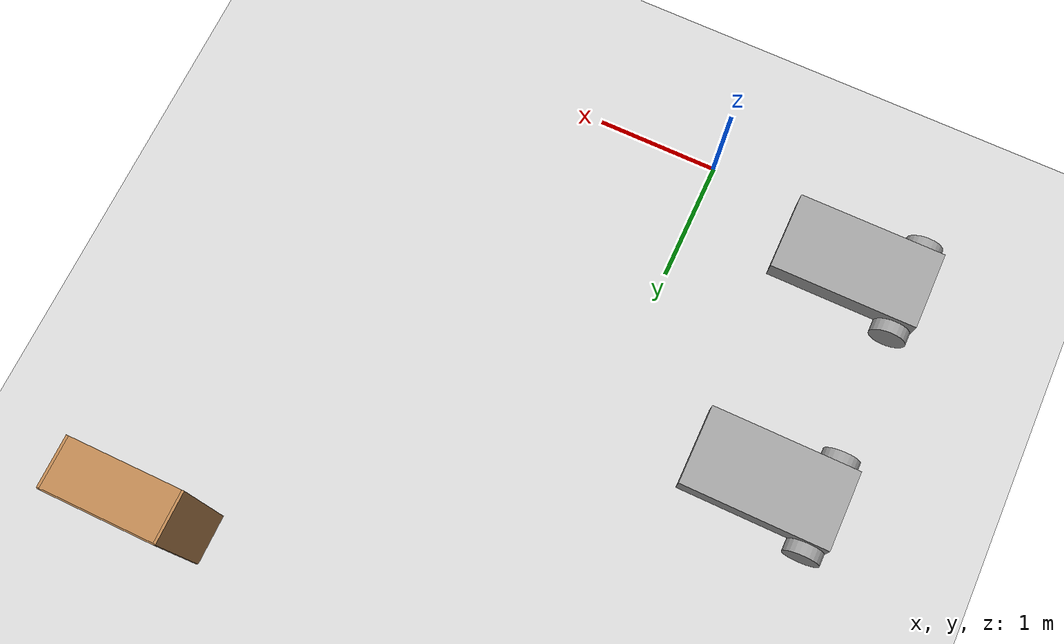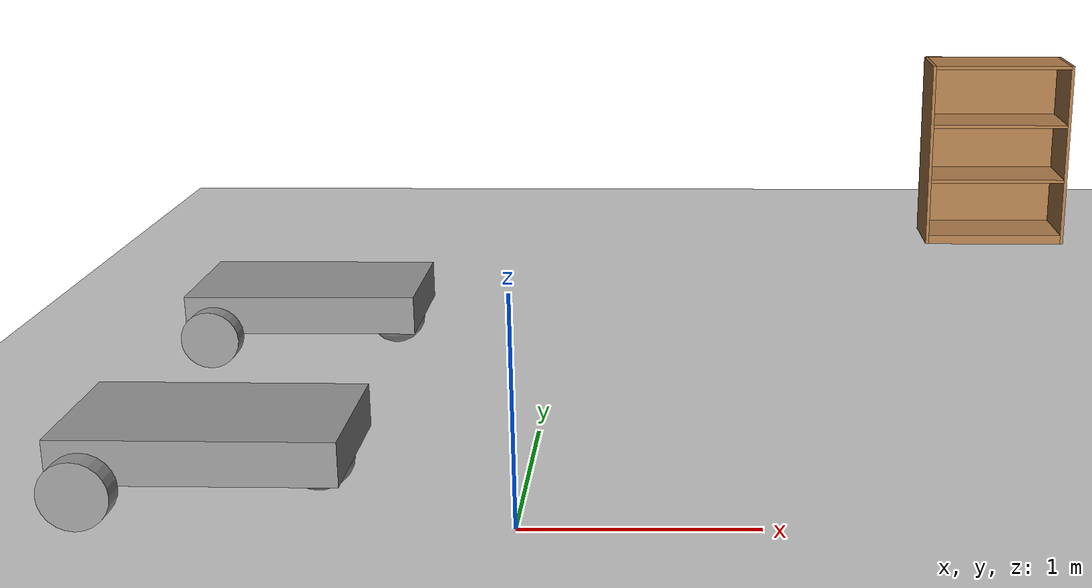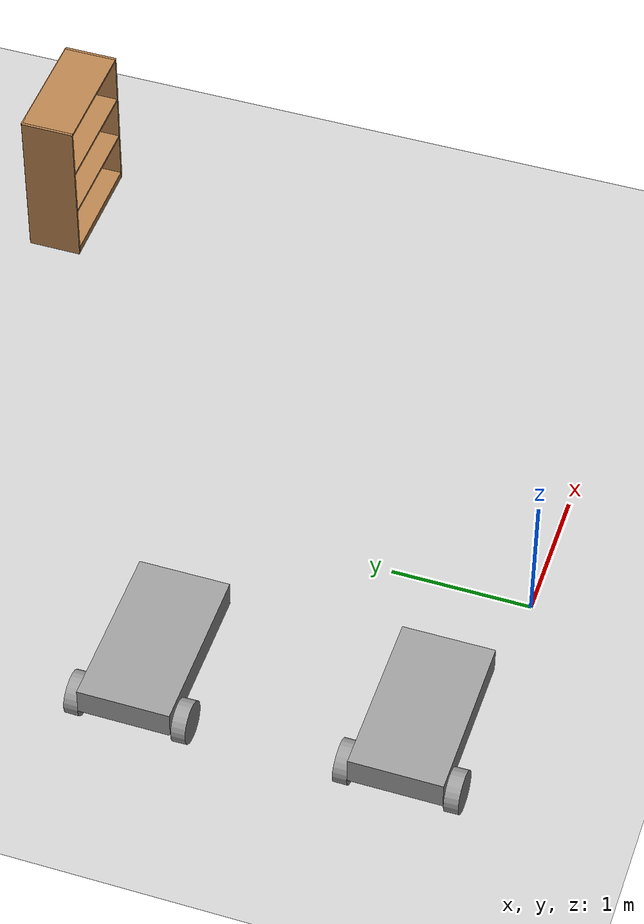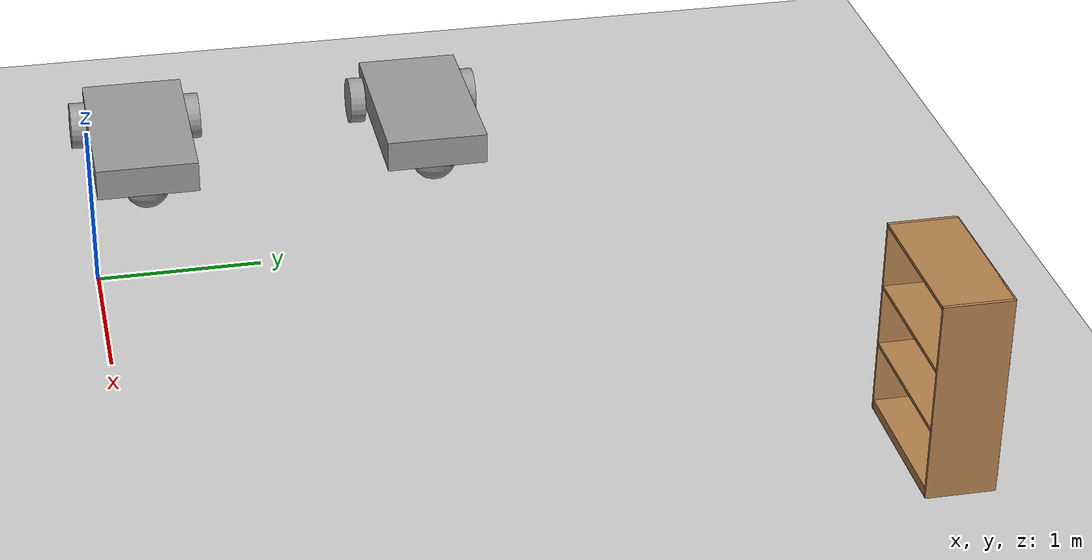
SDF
<sdf version="1.6">
 <world name="default">
  <model name="ground_plane">
   <static>1</static>
   <link name="link">
    <collision name="collision">
     <geometry><plane><normal>0 0 1</normal><size>100 100</size></plane></geometry>
     <surface><friction><ode><mu>100</mu><mu2>50</mu2></ode></friction></surface>
    </collision>
    <visual name="visual">
     <cast_shadows>0</cast_shadows>
     <geometry><plane><normal>0 0 1</normal><size>100 100</size></plane></geometry>
     <material>
      <script><uri>file://media/materials/scripts/gazebo.material</uri><name>Gazebo/Grey</name></script>
     </material>
    </visual>
   </link>
  </model>
  <model name="robot">
   <link name="link_0">
    <pose>0.1125 0.000384 -0.148115 0 -0 0</pose>
    <inertial>
     <mass>1</mass>
     <inertia>
      <ixx>0.166667</ixx>
      <ixy>0</ixy>
      <ixz>0</ixz>
      <iyy>0.166667</iyy>
      <iyz>0</iyz>
      <izz>0.166667</izz>
     </inertia>
    </inertial>
    <visual name="visual">
     <pose>0 0 0.3 0 -0 0</pose>
     <geometry><box><size>1.2 0.65 0.2</size></box></geometry>
     <material>
      <lighting>1</lighting>
      <script><uri>file://media/materials/scripts/gazebo.material</uri><name>Gazebo/Grey</name></script>
      <shader type="pixel"><normal_map>__default__</normal_map></shader>
      <ambient>0.3 0.3 0.3 1</ambient>
      <diffuse>0.7 0.7 0.7 1</diffuse>
      <specular>0.01 0.01 0.01 1</specular>
      <emissive>0 0 0 1</emissive>
     </material>
    </visual>
    <collision name="collision">
     <pose>0 0 0.3 0 -0 0</pose>
     <geometry><box><size>1.2 0.65 0.2</size></box></geometry>
     <surface>
      <friction>
       <ode><mu>1</mu><mu2>1</mu2><fdir1>0 0 0</fdir1><slip1>0</slip1><slip2>0</slip2></ode>
       <torsional>
        <coefficient>1</coefficient>
        <patch_radius>0</patch_radius>
        <surface_radius>0</surface_radius>
        <use_patch_radius>1</use_patch_radius>
        <ode><slip>0</slip></ode>
       </torsional>
      </friction>
      <bounce><restitution_coefficient>0</restitution_coefficient><threshold>1e+06</threshold></bounce>
      <contact>
       <collide_without_contact>0</collide_without_contact>
       <collide_without_contact_bitmask>1</collide_without_contact_bitmask>
       <collide_bitmask>1</collide_bitmask>
       <ode>
        <soft_cfm>0</soft_cfm>
        <soft_erp>0.2</soft_erp>
        <kp>1e+13</kp>
        <kd>1</kd>
        <max_vel>0.01</max_vel>
        <min_depth>0</min_depth>
       </ode>
       <bullet>
        <split_impulse>1</split_impulse>
        <split_impulse_penetration_threshold>-0.01</split_impulse_penetration_threshold>
        <soft_cfm>0</soft_cfm>
        <soft_erp>0.2</soft_erp>
        <kp>1e+13</kp>
        <kd>1</kd>
       </bullet>
      </contact>
     </surface>
    </collision>
   </link>
   <link name="link_1">
    <pose>0.5625 0.000384 0.051885 0 -0 0</pose>
    <inertial>
     <mass>1</mass>
     <inertia><ixx>0.1</ixx><ixy>0</ixy><ixz>0</ixz><iyy>0.1</iyy><iyz>0</iyz><izz>0.1</izz></inertia>
    </inertial>
    <visual name="visual">
     <geometry><sphere><radius>0.15</radius></sphere></geometry>
     <material>
      <lighting>1</lighting>
      <script><uri>file://media/materials/scripts/gazebo.material</uri><name>Gazebo/Grey</name></script>
      <shader type="pixel"><normal_map>__default__</normal_map></shader>
      <ambient>0.3 0.3 0.3 1</ambient>
      <diffuse>0.7 0.7 0.7 1</diffuse>
      <specular>0.01 0.01 0.01 1</specular>
      <emissive>0 0 0 1</emissive>
     </material>
    </visual>
    <collision name="collision">
     <geometry><sphere><radius>0.15</radius></sphere></geometry>
     <surface>
      <friction>
       <ode><mu>1</mu><mu2>1</mu2><fdir1>0 0 0</fdir1><slip1>0</slip1><slip2>0</slip2></ode>
       <torsional>
        <coefficient>1</coefficient>
        <patch_radius>0</patch_radius>
        <surface_radius>0</surface_radius>
        <use_patch_radius>1</use_patch_radius>
        <ode><slip>0</slip></ode>
       </torsional>
      </friction>
      <bounce><restitution_coefficient>0</restitution_coefficient><threshold>1e+06</threshold></bounce>
      <contact>
       <collide_without_contact>0</collide_without_contact>
       <collide_without_contact_bitmask>1</collide_without_contact_bitmask>
       <collide_bitmask>1</collide_bitmask>
       <ode>
        <soft_cfm>0</soft_cfm>
        <soft_erp>0.2</soft_erp>
        <kp>1e+13</kp>
        <kd>1</kd>
        <max_vel>0.01</max_vel>
        <min_depth>0</min_depth>
       </ode>
       <bullet>
        <split_impulse>1</split_impulse>
        <split_impulse_penetration_threshold>-0.01</split_impulse_penetration_threshold>
        <soft_cfm>0</soft_cfm>
        <soft_erp>0.2</soft_erp>
        <kp>1e+13</kp>
        <kd>1</kd>
       </bullet>
      </contact>
     </surface>
    </collision>
   </link>
   <link name="link_2">
    <pose>-0.3375 0.377183 0.047845 -1.55878 0 0</pose>
    <inertial>
     <mass>1</mass>
     <inertia><ixx>0.145833</ixx><ixy>0</ixy><ixz>0</ixz><iyy>0.145833</iyy><iyz>0</iyz><izz>0.125</izz></inertia>
    </inertial>
    <visual name="visual">
     <geometry><cylinder><radius>0.15</radius><length>0.1</length></cylinder></geometry>
     <material>
      <lighting>1</lighting>
      <script><uri>file://media/materials/scripts/gazebo.material</uri><name>Gazebo/Grey</name></script>
      <shader type="pixel"><normal_map>__default__</normal_map></shader>
      <ambient>0.3 0.3 0.3 1</ambient>
      <diffuse>0.7 0.7 0.7 1</diffuse>
      <specular>0.01 0.01 0.01 1</specular>
      <emissive>0 0 0 1</emissive>
     </material>
    </visual>
    <collision name="collision">
     <geometry><cylinder><radius>0.15</radius><length>0.1</length></cylinder></geometry>
     <surface>
      <friction>
       <ode><mu>1</mu><mu2>1</mu2><fdir1>0 0 0</fdir1><slip1>0</slip1><slip2>0</slip2></ode>
       <torsional>
        <coefficient>1</coefficient>
        <patch_radius>0</patch_radius>
        <surface_radius>0</surface_radius>
        <use_patch_radius>1</use_patch_radius>
        <ode><slip>0</slip></ode>
       </torsional>
      </friction>
      <bounce><restitution_coefficient>0</restitution_coefficient><threshold>1e+06</threshold></bounce>
      <contact>
       <collide_without_contact>0</collide_without_contact>
       <collide_without_contact_bitmask>1</collide_without_contact_bitmask>
       <collide_bitmask>1</collide_bitmask>
       <ode>
        <soft_cfm>0</soft_cfm>
        <soft_erp>0.2</soft_erp>
        <kp>1e+13</kp>
        <kd>1</kd>
        <max_vel>0.01</max_vel>
        <min_depth>0</min_depth>
       </ode>
       <bullet>
        <split_impulse>1</split_impulse>
        <split_impulse_penetration_threshold>-0.01</split_impulse_penetration_threshold>
        <soft_cfm>0</soft_cfm>
        <soft_erp>0.2</soft_erp>
        <kp>1e+13</kp>
        <kd>1</kd>
       </bullet>
      </contact>
     </surface>
    </collision>
   </link>
   <link name="link_2_clone">
    <pose>-0.3375 -0.377954 0.048385 1.54846 -0 0</pose>
    <inertial>
     <mass>1</mass>
     <inertia><ixx>0.145833</ixx><ixy>0</ixy><ixz>0</ixz><iyy>0.145833</iyy><iyz>0</iyz><izz>0.125</izz></inertia>
    </inertial>
    <visual name="visual">
     <geometry><cylinder><radius>0.15</radius><length>0.1</length></cylinder></geometry>
     <material>
      <lighting>1</lighting>
      <script><uri>file://media/materials/scripts/gazebo.material</uri><name>Gazebo/Grey</name></script>
      <shader type="pixel"><normal_map>__default__</normal_map></shader>
      <ambient>0.3 0.3 0.3 1</ambient>
      <diffuse>0.7 0.7 0.7 1</diffuse>
      <specular>0.01 0.01 0.01 1</specular>
      <emissive>0 0 0 1</emissive>
     </material>
    </visual>
    <collision name="collision">
     <geometry><cylinder><radius>0.15</radius><length>0.1</length></cylinder></geometry>
     <surface>
      <friction>
       <ode><mu>1</mu><mu2>1</mu2><fdir1>0 0 0</fdir1><slip1>0</slip1><slip2>0</slip2></ode>
       <torsional>
        <coefficient>1</coefficient>
        <patch_radius>0</patch_radius>
        <surface_radius>0</surface_radius>
        <use_patch_radius>1</use_patch_radius>
        <ode><slip>0</slip></ode>
       </torsional>
      </friction>
      <bounce><restitution_coefficient>0</restitution_coefficient><threshold>1e+06</threshold></bounce>
      <contact>
       <collide_without_contact>0</collide_without_contact>
       <collide_without_contact_bitmask>1</collide_without_contact_bitmask>
       <collide_bitmask>1</collide_bitmask>
       <ode>
        <soft_cfm>0</soft_cfm>
        <soft_erp>0.2</soft_erp>
        <kp>1e+13</kp>
        <kd>1</kd>
        <max_vel>0.01</max_vel>
        <min_depth>0</min_depth>
       </ode>
       <bullet>
        <split_impulse>1</split_impulse>
        <split_impulse_penetration_threshold>-0.01</split_impulse_penetration_threshold>
        <soft_cfm>0</soft_cfm>
        <soft_erp>0.2</soft_erp>
        <kp>1e+13</kp>
        <kd>1</kd>
       </bullet>
      </contact>
     </surface>
    </collision>
   </link>
   <joint name="link_0_JOINT_1" type="revolute">
    <parent>link_0</parent>
    <child>link_2_clone</child>
    <axis>
     <xyz>0 0 -1</xyz>
     <use_parent_model_frame>0</use_parent_model_frame>
     <limit>
      <lower>-1.79769e+308</lower>
      <upper>1.79769e+308</upper>
      <effort>-1</effort>
      <velocity>-1</velocity>
     </limit>
     <dynamics>
      <spring_reference>0</spring_reference>
      <spring_stiffness>0</spring_stiffness>
      <damping>0</damping>
     </dynamics>
    </axis>
    <physics>
     <ode><limit><cfm>0</cfm><erp>0.2</erp></limit><suspension><cfm>0</cfm><erp>0.2</erp></suspension></ode>
    </physics>
   </joint>
   <joint name="link_0_JOINT_2" type="revolute">
    <parent>link_0</parent>
    <child>link_2</child>
    <axis>
     <xyz>0 0 1</xyz>
     <use_parent_model_frame>0</use_parent_model_frame>
     <limit>
      <lower>-1.79769e+308</lower>
      <upper>1.79769e+308</upper>
      <effort>-1</effort>
      <velocity>-1</velocity>
     </limit>
     <dynamics>
      <spring_reference>0</spring_reference>
      <spring_stiffness>0</spring_stiffness>
      <damping>0</damping>
     </dynamics>
    </axis>
    <physics>
     <ode><limit><cfm>0</cfm><erp>0.2</erp></limit><suspension><cfm>0</cfm><erp>0.2</erp></suspension></ode>
    </physics>
   </joint>
   <joint name="link_0_JOINT_3" type="ball">
    <parent>link_0</parent>
    <child>link_1</child>
    <physics>
     <ode><limit><cfm>0</cfm><erp>0.2</erp></limit><suspension><cfm>0</cfm><erp>0.2</erp></suspension></ode>
    </physics>
   </joint>
   <static>0</static>
   <pose>-1.43916 0.38424 0.100994 7.4e-05 0.005117 -0.000312</pose>
  </model>
  <model name="robot_0">
   <link name="link_0">
    <pose>0.1125 0.000384 -0.148115 0 -0 0</pose>
    <inertial>
     <mass>1</mass>
     <inertia>
      <ixx>0.166667</ixx>
      <ixy>0</ixy>
      <ixz>0</ixz>
      <iyy>0.166667</iyy>
      <iyz>0</iyz>
      <izz>0.166667</izz>
     </inertia>
    </inertial>
    <visual name="visual">
     <pose>0 0 0.3 0 -0 0</pose>
     <geometry><box><size>1.2 0.65 0.2</size></box></geometry>
     <material>
      <lighting>1</lighting>
      <script><uri>file://media/materials/scripts/gazebo.material</uri><name>Gazebo/Grey</name></script>
      <shader type="pixel"><normal_map>__default__</normal_map></shader>
      <ambient>0.3 0.3 0.3 1</ambient>
      <diffuse>0.7 0.7 0.7 1</diffuse>
      <specular>0.01 0.01 0.01 1</specular>
      <emissive>0 0 0 1</emissive>
     </material>
    </visual>
    <collision name="collision">
     <pose>0 0 0.3 0 -0 0</pose>
     <geometry><box><size>1.2 0.65 0.2</size></box></geometry>
     <surface>
      <friction>
       <ode><mu>1</mu><mu2>1</mu2><fdir1>0 0 0</fdir1><slip1>0</slip1><slip2>0</slip2></ode>
       <torsional>
        <coefficient>1</coefficient>
        <patch_radius>0</patch_radius>
        <surface_radius>0</surface_radius>
        <use_patch_radius>1</use_patch_radius>
        <ode><slip>0</slip></ode>
       </torsional>
      </friction>
      <bounce><restitution_coefficient>0</restitution_coefficient><threshold>1e+06</threshold></bounce>
      <contact>
       <collide_without_contact>0</collide_without_contact>
       <collide_without_contact_bitmask>1</collide_without_contact_bitmask>
       <collide_bitmask>1</collide_bitmask>
       <ode>
        <soft_cfm>0</soft_cfm>
        <soft_erp>0.2</soft_erp>
        <kp>1e+13</kp>
        <kd>1</kd>
        <max_vel>0.01</max_vel>
        <min_depth>0</min_depth>
       </ode>
       <bullet>
        <split_impulse>1</split_impulse>
        <split_impulse_penetration_threshold>-0.01</split_impulse_penetration_threshold>
        <soft_cfm>0</soft_cfm>
        <soft_erp>0.2</soft_erp>
        <kp>1e+13</kp>
        <kd>1</kd>
       </bullet>
      </contact>
     </surface>
    </collision>
   </link>
   <link name="link_1">
    <pose>0.5625 0.000384 0.051885 0 -0 0</pose>
    <inertial>
     <mass>1</mass>
     <inertia><ixx>0.1</ixx><ixy>0</ixy><ixz>0</ixz><iyy>0.1</iyy><iyz>0</iyz><izz>0.1</izz></inertia>
    </inertial>
    <visual name="visual">
     <geometry><sphere><radius>0.15</radius></sphere></geometry>
     <material>
      <lighting>1</lighting>
      <script><uri>file://media/materials/scripts/gazebo.material</uri><name>Gazebo/Grey</name></script>
      <shader type="pixel"><normal_map>__default__</normal_map></shader>
      <ambient>0.3 0.3 0.3 1</ambient>
      <diffuse>0.7 0.7 0.7 1</diffuse>
      <specular>0.01 0.01 0.01 1</specular>
      <emissive>0 0 0 1</emissive>
     </material>
    </visual>
    <collision name="collision">
     <geometry><sphere><radius>0.15</radius></sphere></geometry>
     <surface>
      <friction>
       <ode><mu>1</mu><mu2>1</mu2><fdir1>0 0 0</fdir1><slip1>0</slip1><slip2>0</slip2></ode>
       <torsional>
        <coefficient>1</coefficient>
        <patch_radius>0</patch_radius>
        <surface_radius>0</surface_radius>
        <use_patch_radius>1</use_patch_radius>
        <ode><slip>0</slip></ode>
       </torsional>
      </friction>
      <bounce><restitution_coefficient>0</restitution_coefficient><threshold>1e+06</threshold></bounce>
      <contact>
       <collide_without_contact>0</collide_without_contact>
       <collide_without_contact_bitmask>1</collide_without_contact_bitmask>
       <collide_bitmask>1</collide_bitmask>
       <ode>
        <soft_cfm>0</soft_cfm>
        <soft_erp>0.2</soft_erp>
        <kp>1e+13</kp>
        <kd>1</kd>
        <max_vel>0.01</max_vel>
        <min_depth>0</min_depth>
       </ode>
       <bullet>
        <split_impulse>1</split_impulse>
        <split_impulse_penetration_threshold>-0.01</split_impulse_penetration_threshold>
        <soft_cfm>0</soft_cfm>
        <soft_erp>0.2</soft_erp>
        <kp>1e+13</kp>
        <kd>1</kd>
       </bullet>
      </contact>
     </surface>
    </collision>
   </link>
   <link name="link_2">
    <pose>-0.3375 0.377183 0.047845 -1.55878 0 0</pose>
    <inertial>
     <mass>1</mass>
     <inertia><ixx>0.145833</ixx><ixy>0</ixy><ixz>0</ixz><iyy>0.145833</iyy><iyz>0</iyz><izz>0.125</izz></inertia>
    </inertial>
    <visual name="visual">
     <geometry><cylinder><radius>0.15</radius><length>0.1</length></cylinder></geometry>
     <material>
      <lighting>1</lighting>
      <script><uri>file://media/materials/scripts/gazebo.material</uri><name>Gazebo/Grey</name></script>
      <shader type="pixel"><normal_map>__default__</normal_map></shader>
      <ambient>0.3 0.3 0.3 1</ambient>
      <diffuse>0.7 0.7 0.7 1</diffuse>
      <specular>0.01 0.01 0.01 1</specular>
      <emissive>0 0 0 1</emissive>
     </material>
    </visual>
    <collision name="collision">
     <geometry><cylinder><radius>0.15</radius><length>0.1</length></cylinder></geometry>
     <surface>
      <friction>
       <ode><mu>1</mu><mu2>1</mu2><fdir1>0 0 0</fdir1><slip1>0</slip1><slip2>0</slip2></ode>
       <torsional>
        <coefficient>1</coefficient>
        <patch_radius>0</patch_radius>
        <surface_radius>0</surface_radius>
        <use_patch_radius>1</use_patch_radius>
        <ode><slip>0</slip></ode>
       </torsional>
      </friction>
      <bounce><restitution_coefficient>0</restitution_coefficient><threshold>1e+06</threshold></bounce>
      <contact>
       <collide_without_contact>0</collide_without_contact>
       <collide_without_contact_bitmask>1</collide_without_contact_bitmask>
       <collide_bitmask>1</collide_bitmask>
       <ode>
        <soft_cfm>0</soft_cfm>
        <soft_erp>0.2</soft_erp>
        <kp>1e+13</kp>
        <kd>1</kd>
        <max_vel>0.01</max_vel>
        <min_depth>0</min_depth>
       </ode>
       <bullet>
        <split_impulse>1</split_impulse>
        <split_impulse_penetration_threshold>-0.01</split_impulse_penetration_threshold>
        <soft_cfm>0</soft_cfm>
        <soft_erp>0.2</soft_erp>
        <kp>1e+13</kp>
        <kd>1</kd>
       </bullet>
      </contact>
     </surface>
    </collision>
   </link>
   <link name="link_2_clone">
    <pose>-0.3375 -0.377954 0.048385 1.54846 -0 0</pose>
    <inertial>
     <mass>1</mass>
     <inertia><ixx>0.145833</ixx><ixy>0</ixy><ixz>0</ixz><iyy>0.145833</iyy><iyz>0</iyz><izz>0.125</izz></inertia>
    </inertial>
    <visual name="visual">
     <geometry><cylinder><radius>0.15</radius><length>0.1</length></cylinder></geometry>
     <material>
      <lighting>1</lighting>
      <script><uri>file://media/materials/scripts/gazebo.material</uri><name>Gazebo/Grey</name></script>
      <shader type="pixel"><normal_map>__default__</normal_map></shader>
      <ambient>0.3 0.3 0.3 1</ambient>
      <diffuse>0.7 0.7 0.7 1</diffuse>
      <specular>0.01 0.01 0.01 1</specular>
      <emissive>0 0 0 1</emissive>
     </material>
    </visual>
    <collision name="collision">
     <geometry><cylinder><radius>0.15</radius><length>0.1</length></cylinder></geometry>
     <surface>
      <friction>
       <ode><mu>1</mu><mu2>1</mu2><fdir1>0 0 0</fdir1><slip1>0</slip1><slip2>0</slip2></ode>
       <torsional>
        <coefficient>1</coefficient>
        <patch_radius>0</patch_radius>
        <surface_radius>0</surface_radius>
        <use_patch_radius>1</use_patch_radius>
        <ode><slip>0</slip></ode>
       </torsional>
      </friction>
      <bounce><restitution_coefficient>0</restitution_coefficient><threshold>1e+06</threshold></bounce>
      <contact>
       <collide_without_contact>0</collide_without_contact>
       <collide_without_contact_bitmask>1</collide_without_contact_bitmask>
       <collide_bitmask>1</collide_bitmask>
       <ode>
        <soft_cfm>0</soft_cfm>
        <soft_erp>0.2</soft_erp>
        <kp>1e+13</kp>
        <kd>1</kd>
        <max_vel>0.01</max_vel>
        <min_depth>0</min_depth>
       </ode>
       <bullet>
        <split_impulse>1</split_impulse>
        <split_impulse_penetration_threshold>-0.01</split_impulse_penetration_threshold>
        <soft_cfm>0</soft_cfm>
        <soft_erp>0.2</soft_erp>
        <kp>1e+13</kp>
        <kd>1</kd>
       </bullet>
      </contact>
     </surface>
    </collision>
   </link>
   <joint name="link_0_JOINT_1" type="revolute">
    <parent>link_0</parent>
    <child>link_2_clone</child>
    <axis>
     <xyz>0 0 -1</xyz>
     <use_parent_model_frame>0</use_parent_model_frame>
     <limit>
      <lower>-1.79769e+308</lower>
      <upper>1.79769e+308</upper>
      <effort>-1</effort>
      <velocity>-1</velocity>
     </limit>
     <dynamics>
      <spring_reference>0</spring_reference>
      <spring_stiffness>0</spring_stiffness>
      <damping>0</damping>
     </dynamics>
    </axis>
    <physics>
     <ode><limit><cfm>0</cfm><erp>0.2</erp></limit><suspension><cfm>0</cfm><erp>0.2</erp></suspension></ode>
    </physics>
   </joint>
   <joint name="link_0_JOINT_2" type="revolute">
    <parent>link_0</parent>
    <child>link_2</child>
    <axis>
     <xyz>0 0 1</xyz>
     <use_parent_model_frame>0</use_parent_model_frame>
     <limit>
      <lower>-1.79769e+308</lower>
      <upper>1.79769e+308</upper>
      <effort>-1</effort>
      <velocity>-1</velocity>
     </limit>
     <dynamics>
      <spring_reference>0</spring_reference>
      <spring_stiffness>0</spring_stiffness>
      <damping>0</damping>
     </dynamics>
    </axis>
    <physics>
     <ode><limit><cfm>0</cfm><erp>0.2</erp></limit><suspension><cfm>0</cfm><erp>0.2</erp></suspension></ode>
    </physics>
   </joint>
   <joint name="link_0_JOINT_3" type="ball">
    <parent>link_0</parent>
    <child>link_1</child>
    <physics>
     <ode><limit><cfm>0</cfm><erp>0.2</erp></limit><suspension><cfm>0</cfm><erp>0.2</erp></suspension></ode>
    </physics>
   </joint>
   <static>0</static>
   <pose>-1.45686 2.25073 0.100994 0 -0 0</pose>
  </model>
  <model name="bookshelf">
   <static>1</static>
   <link name="link">
    <inertial><mass>1</mass></inertial>
    <collision name="back">
     <pose>0 0.005 0.6 0 -0 0</pose>
     <geometry><box><size>0.9 0.01 1.2</size></box></geometry>
    </collision>
    <visual name="visual1">
     <pose>0 0.005 0.6 0 -0 0</pose>
     <geometry><box><size>0.9 0.01 1.2</size></box></geometry>
     <material>
      <script><uri>file://media/materials/scripts/gazebo.material</uri><name>Gazebo/Wood</name></script>
     </material>
    </visual>
    <collision name="left_side">
     <pose>0.45 -0.195 0.6 0 -0 0</pose>
     <geometry><box><size>0.02 0.4 1.2</size></box></geometry>
    </collision>
    <visual name="visual2">
     <pose>0.45 -0.195 0.6 0 -0 0</pose>
     <geometry><box><size>0.02 0.4 1.2</size></box></geometry>
     <material>
      <script><uri>file://media/materials/scripts/gazebo.material</uri><name>Gazebo/Wood</name></script>
     </material>
    </visual>
    <collision name="right_side">
     <pose>-0.45 -0.195 0.6 0 -0 0</pose>
     <geometry><box><size>0.02 0.4 1.2</size></box></geometry>
    </collision>
    <visual name="visual3">
     <pose>-0.45 -0.195 0.6 0 -0 0</pose>
     <geometry><box><size>0.02 0.4 1.2</size></box></geometry>
     <material>
      <script><uri>file://media/materials/scripts/gazebo.material</uri><name>Gazebo/Wood</name></script>
     </material>
    </visual>
    <collision name="bottom">
     <pose>0 -0.195 0.03 0 -0 0</pose>
     <geometry><box><size>0.88 0.4 0.06</size></box></geometry>
    </collision>
    <visual name="visual4">
     <pose>0 -0.195 0.03 0 -0 0</pose>
     <geometry><box><size>0.88 0.4 0.06</size></box></geometry>
     <material>
      <script><uri>file://media/materials/scripts/gazebo.material</uri><name>Gazebo/Wood</name></script>
     </material>
    </visual>
    <collision name="top">
     <pose>0 -0.195 1.19 0 -0 0</pose>
     <geometry><box><size>0.88 0.4 0.02</size></box></geometry>
    </collision>
    <visual name="visual5">
     <pose>0 -0.195 1.19 0 -0 0</pose>
     <geometry><box><size>0.88 0.4 0.02</size></box></geometry>
     <material>
      <script><uri>file://media/materials/scripts/gazebo.material</uri><name>Gazebo/Wood</name></script>
     </material>
    </visual>
    <collision name="low_shelf">
     <pose>0 -0.195 0.43 0 -0 0</pose>
     <geometry><box><size>0.88 0.4 0.02</size></box></geometry>
    </collision>
    <visual name="visual6">
     <pose>0 -0.195 0.43 0 -0 0</pose>
     <geometry><box><size>0.88 0.4 0.02</size></box></geometry>
     <material>
      <script><uri>file://media/materials/scripts/gazebo.material</uri><name>Gazebo/Wood</name></script>
     </material>
    </visual>
    <collision name="high_shelf">
     <pose>0 -0.195 0.8 0 -0 0</pose>
     <geometry><box><size>0.88 0.4 0.02</size></box></geometry>
    </collision>
    <visual name="visual7">
     <pose>0 -0.195 0.8 0 -0 0</pose>
     <geometry><box><size>0.88 0.4 0.02</size></box></geometry>
     <material>
      <script><uri>file://media/materials/scripts/gazebo.material</uri><name>Gazebo/Wood</name></script>
     </material>
    </visual>
   </link>
   <pose>2.74646 4.59464 0 0 -0 0</pose>
  </model>
 </world>
</sdf>
